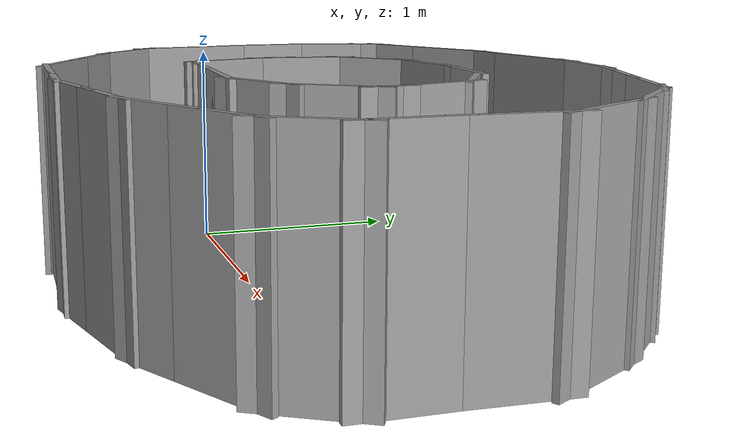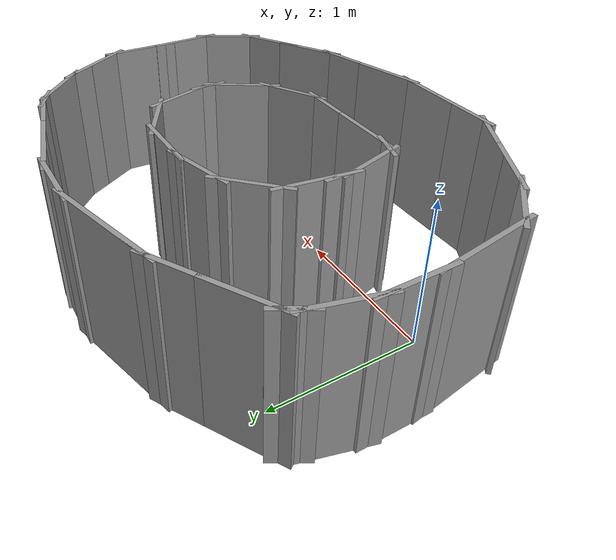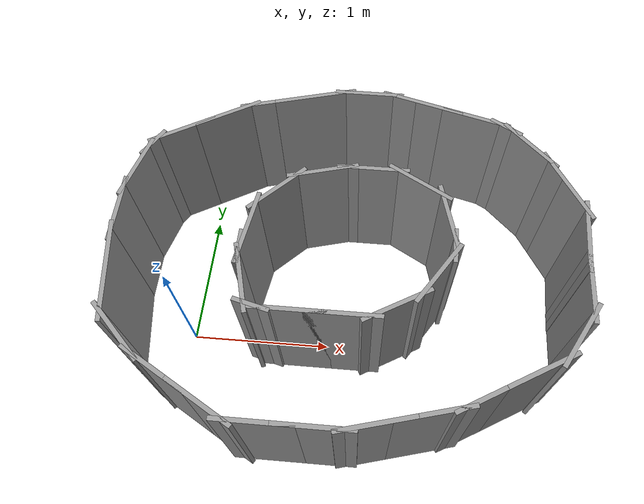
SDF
<?xml version='1.0'?>
<sdf version='1.6'>
  <model name='round'>
    <pose frame=''>1.14 0.38 0 0 -0 0</pose>
    <link name='Wall_10'>
      <collision name='Wall_10_Collision'>
        <geometry>
          <box>
            <size>0.517884 0.03 1</size>
          </box>
        </geometry>
        <pose frame=''>0 0 0.5 0 -0 0</pose>
      </collision>
      <visual name='Wall_10_Visual'>
        <pose frame=''>0 0 0.5 0 -0 0</pose>
        <geometry>
          <box>
            <size>0.517884 0.03 1</size>
          </box>
        </geometry>
        <material>
          <script>
            <uri>file://media/materials/scripts/gazebo.material</uri>
            <name>Gazebo/Grey</name>
          </script>
          <ambient>1 1 1 1</ambient>
        </material>
        <meta>
          <layer>0</layer>
        </meta>
      </visual>
      <pose frame=''>0.582455 -0.199964 0 0 -0 0.99695</pose>
    </link>
    <link name='Wall_11'>
      <collision name='Wall_11_Collision'>
        <geometry>
          <box>
            <size>0.25 0.03 1</size>
          </box>
        </geometry>
        <pose frame=''>0 0 0.5 0 -0 0</pose>
      </collision>
      <visual name='Wall_11_Visual'>
        <pose frame=''>0 0 0.5 0 -0 0</pose>
        <geometry>
          <box>
            <size>0.25 0.03 1</size>
          </box>
        </geometry>
        <material>
          <script>
            <uri>file://media/materials/scripts/gazebo.material</uri>
            <name>Gazebo/Grey</name>
          </script>
          <ambient>1 1 1 1</ambient>
        </material>
        <meta>
          <layer>0</layer>
        </meta>
      </visual>
      <pose frame=''>0.68231 0.004514 0 0 -0 1.5708</pose>
    </link>
    <link name='Wall_12'>
      <collision name='Wall_12_Collision'>
        <geometry>
          <box>
            <size>0.5 0.03 1</size>
          </box>
        </geometry>
        <pose frame=''>0 0 0.5 0 -0 0</pose>
      </collision>
      <visual name='Wall_12_Visual'>
        <pose frame=''>0 0 0.5 0 -0 0</pose>
        <geometry>
          <box>
            <size>0.5 0.03 1</size>
          </box>
        </geometry>
        <material>
          <script>
            <uri>file://media/materials/scripts/gazebo.material</uri>
            <name>Gazebo/Grey</name>
          </script>
          <ambient>1 1 1 1</ambient>
        </material>
        <meta>
          <layer>0</layer>
        </meta>
      </visual>
      <pose frame=''>0.637017 0.223551 0 0 -0 1.8326</pose>
    </link>
    <link name='Wall_13'>
      <collision name='Wall_13_Collision'>
        <geometry>
          <box>
            <size>0.5 0.03 1</size>
          </box>
        </geometry>
        <pose frame=''>0 0 0.5 0 -0 0</pose>
      </collision>
      <visual name='Wall_13_Visual'>
        <pose frame=''>0 0 0.5 0 -0 0</pose>
        <geometry>
          <box>
            <size>0.5 0.03 1</size>
          </box>
        </geometry>
        <material>
          <script>
            <uri>file://media/materials/scripts/gazebo.material</uri>
            <name>Gazebo/Grey</name>
          </script>
          <ambient>1 1 1 1</ambient>
        </material>
        <meta>
          <layer>0</layer>
        </meta>
      </visual>
      <pose frame=''>0.440169 0.480088 0 0 -0 2.61799</pose>
    </link>
    <link name='Wall_14'>
      <collision name='Wall_14_Collision'>
        <geometry>
          <box>
            <size>0.5 0.03 1</size>
          </box>
        </geometry>
        <pose frame=''>0 0 0.5 0 -0 0</pose>
      </collision>
      <visual name='Wall_14_Visual'>
        <pose frame=''>0 0 0.5 0 -0 0</pose>
        <geometry>
          <box>
            <size>0.5 0.03 1</size>
          </box>
        </geometry>
        <material>
          <script>
            <uri>file://media/materials/scripts/gazebo.material</uri>
            <name>Gazebo/Grey</name>
          </script>
          <ambient>1 1 1 1</ambient>
        </material>
        <meta>
          <layer>0</layer>
        </meta>
      </visual>
      <pose frame=''>0.113615 0.567588 0 0 -0 3.14159</pose>
    </link>
    <link name='Wall_15'>
      <collision name='Wall_15_Collision'>
        <geometry>
          <box>
            <size>0.15 0.03 1</size>
          </box>
        </geometry>
        <pose frame=''>0 0 0.5 0 -0 0</pose>
      </collision>
      <visual name='Wall_15_Visual'>
        <pose frame=''>0 0 0.5 0 -0 0</pose>
        <geometry>
          <box>
            <size>0.15 0.03 1</size>
          </box>
        </geometry>
        <material>
          <script>
            <uri>file://media/materials/scripts/gazebo.material</uri>
            <name>Gazebo/Grey</name>
          </script>
          <ambient>1 1 1 1</ambient>
        </material>
        <meta>
          <layer>0</layer>
        </meta>
      </visual>
      <pose frame=''>-0.061385 0.567588 0 0 -0 0</pose>
    </link>
    <link name='Wall_16'>
      <collision name='Wall_16_Collision'>
        <geometry>
          <box>
            <size>0.5 0.03 1</size>
          </box>
        </geometry>
        <pose frame=''>0 0 0.5 0 -0 0</pose>
      </collision>
      <visual name='Wall_16_Visual'>
        <pose frame=''>0 0 0.5 0 -0 0</pose>
        <geometry>
          <box>
            <size>0.5 0.03 1</size>
          </box>
        </geometry>
        <material>
          <script>
            <uri>file://media/materials/scripts/gazebo.material</uri>
            <name>Gazebo/Grey</name>
          </script>
          <ambient>1 1 1 1</ambient>
        </material>
        <meta>
          <layer>0</layer>
        </meta>
      </visual>
      <pose frame=''>-0.230422 0.522295 0 0 0 -2.87979</pose>
    </link>
    <link name='Wall_17'>
      <collision name='Wall_17_Collision'>
        <geometry>
          <box>
            <size>0.5 0.03 1</size>
          </box>
        </geometry>
        <pose frame=''>0 0 0.5 0 -0 0</pose>
      </collision>
      <visual name='Wall_17_Visual'>
        <pose frame=''>0 0 0.5 0 -0 0</pose>
        <geometry>
          <box>
            <size>0.5 0.03 1</size>
          </box>
        </geometry>
        <material>
          <script>
            <uri>file://media/materials/scripts/gazebo.material</uri>
            <name>Gazebo/Grey</name>
          </script>
          <ambient>1 1 1 1</ambient>
        </material>
        <meta>
          <layer>0</layer>
        </meta>
      </visual>
      <pose frame=''>-0.523203 0.353258 0 0 0 -2.35619</pose>
    </link>
    <link name='Wall_18'>
      <collision name='Wall_18_Collision'>
        <geometry>
          <box>
            <size>0.549643 0.03 1</size>
          </box>
        </geometry>
        <pose frame=''>0 0 0.5 0 -0 0</pose>
      </collision>
      <visual name='Wall_18_Visual'>
        <pose frame=''>0 0 0.5 0 -0 0</pose>
        <geometry>
          <box>
            <size>0.549643 0.03 1</size>
          </box>
        </geometry>
        <material>
          <script>
            <uri>file://media/materials/scripts/gazebo.material</uri>
            <name>Gazebo/Grey</name>
          </script>
          <ambient>1 1 1 1</ambient>
        </material>
        <meta>
          <layer>0</layer>
        </meta>
      </visual>
      <pose frame=''>-0.677318 0.032014 0 0 0 -1.72338</pose>
    </link>
    <link name='Wall_20'>
      <collision name='Wall_20_Collision'>
        <geometry>
          <box>
            <size>0.5 0.03 1</size>
          </box>
        </geometry>
        <pose frame=''>0 0 0.5 0 -0 0</pose>
      </collision>
      <visual name='Wall_20_Visual'>
        <pose frame=''>0 0 0.5 0 -0 0</pose>
        <geometry>
          <box>
            <size>0.5 0.03 1</size>
          </box>
        </geometry>
        <material>
          <script>
            <uri>file://media/materials/scripts/gazebo.material</uri>
            <name>Gazebo/Grey</name>
          </script>
          <ambient>1 1 1 1</ambient>
        </material>
        <meta>
          <layer>0</layer>
        </meta>
      </visual>
      <pose frame=''>-1.55769 0.109514 0 0 -0 1.5708</pose>
    </link>
    <link name='Wall_21'>
      <collision name='Wall_21_Collision'>
        <geometry>
          <box>
            <size>0.5 0.03 1</size>
          </box>
        </geometry>
        <pose frame=''>0 0 0.5 0 -0 0</pose>
      </collision>
      <visual name='Wall_21_Visual'>
        <pose frame=''>0 0 0.5 0 -0 0</pose>
        <geometry>
          <box>
            <size>0.5 0.03 1</size>
          </box>
        </geometry>
        <material>
          <script>
            <uri>file://media/materials/scripts/gazebo.material</uri>
            <name>Gazebo/Grey</name>
          </script>
          <ambient>1 1 1 1</ambient>
        </material>
        <meta>
          <layer>0</layer>
        </meta>
      </visual>
      <pose frame=''>-1.5124 0.453551 0 0 -0 1.309</pose>
    </link>
    <link name='Wall_22'>
      <collision name='Wall_22_Collision'>
        <geometry>
          <box>
            <size>0.25 0.03 1</size>
          </box>
        </geometry>
        <pose frame=''>0 0 0.5 0 -0 0</pose>
      </collision>
      <visual name='Wall_22_Visual'>
        <pose frame=''>0 0 0.5 0 -0 0</pose>
        <geometry>
          <box>
            <size>0.25 0.03 1</size>
          </box>
        </geometry>
        <material>
          <script>
            <uri>file://media/materials/scripts/gazebo.material</uri>
            <name>Gazebo/Grey</name>
          </script>
          <ambient>1 1 1 1</ambient>
        </material>
        <meta>
          <layer>0</layer>
        </meta>
      </visual>
      <pose frame=''>-1.4421 0.66589 0 0 -0 1.0472</pose>
    </link>
    <link name='Wall_23'>
      <collision name='Wall_23_Collision'>
        <geometry>
          <box>
            <size>0.5 0.03 1</size>
          </box>
        </geometry>
        <pose frame=''>0 0 0.5 0 -0 0</pose>
      </collision>
      <visual name='Wall_23_Visual'>
        <pose frame=''>0 0 0.5 0 -0 0</pose>
        <geometry>
          <box>
            <size>0.5 0.03 1</size>
          </box>
        </geometry>
        <material>
          <script>
            <uri>file://media/materials/scripts/gazebo.material</uri>
            <name>Gazebo/Grey</name>
          </script>
          <ambient>1 1 1 1</ambient>
        </material>
        <meta>
          <layer>0</layer>
        </meta>
      </visual>
      <pose frame=''>-1.26555 0.796691 0 0 -0 0.523599</pose>
    </link>
    <link name='Wall_24'>
      <collision name='Wall_24_Collision'>
        <geometry>
          <box>
            <size>0.5 0.03 1</size>
          </box>
        </geometry>
        <pose frame=''>0 0 0.5 0 -0 0</pose>
      </collision>
      <visual name='Wall_24_Visual'>
        <pose frame=''>0 0 0.5 0 -0 0</pose>
        <geometry>
          <box>
            <size>0.5 0.03 1</size>
          </box>
        </geometry>
        <material>
          <script>
            <uri>file://media/materials/scripts/gazebo.material</uri>
            <name>Gazebo/Grey</name>
          </script>
          <ambient>1 1 1 1</ambient>
        </material>
        <meta>
          <layer>0</layer>
        </meta>
      </visual>
      <pose frame=''>-0.96244 0.971691 0 0 -0 0.523599</pose>
    </link>
    <link name='Wall_25'>
      <collision name='Wall_25_Collision'>
        <geometry>
          <box>
            <size>0.25 0.03 1</size>
          </box>
        </geometry>
        <pose frame=''>0 0 0.5 0 -0 0</pose>
      </collision>
      <visual name='Wall_25_Visual'>
        <pose frame=''>0 0 0.5 0 -0 0</pose>
        <geometry>
          <box>
            <size>0.25 0.03 1</size>
          </box>
        </geometry>
        <material>
          <script>
            <uri>file://media/materials/scripts/gazebo.material</uri>
            <name>Gazebo/Grey</name>
          </script>
          <ambient>1 1 1 1</ambient>
        </material>
        <meta>
          <layer>0</layer>
        </meta>
      </visual>
      <pose frame=''>-0.762589 1.07213 0 0 -0 0.261799</pose>
    </link>
    <link name='Wall_26'>
      <collision name='Wall_26_Collision'>
        <geometry>
          <box>
            <size>0.75 0.03 1</size>
          </box>
        </geometry>
        <pose frame=''>0 0 0.5 0 -0 0</pose>
      </collision>
      <visual name='Wall_26_Visual'>
        <pose frame=''>0 0 0.5 0 -0 0</pose>
        <geometry>
          <box>
            <size>0.75 0.03 1</size>
          </box>
        </geometry>
        <material>
          <script>
            <uri>file://media/materials/scripts/gazebo.material</uri>
            <name>Gazebo/Grey</name>
          </script>
          <ambient>1 1 1 1</ambient>
        </material>
        <meta>
          <layer>0</layer>
        </meta>
      </visual>
      <pose frame=''>-0.424515 1.16272 0 0 -0 0.261799</pose>
    </link>
    <link name='Wall_27'>
      <collision name='Wall_27_Collision'>
        <geometry>
          <box>
            <size>0.5 0.03 1</size>
          </box>
        </geometry>
        <pose frame=''>0 0 0.5 0 -0 0</pose>
      </collision>
      <visual name='Wall_27_Visual'>
        <pose frame=''>0 0 0.5 0 -0 0</pose>
        <geometry>
          <box>
            <size>0.5 0.03 1</size>
          </box>
        </geometry>
        <material>
          <script>
            <uri>file://media/materials/scripts/gazebo.material</uri>
            <name>Gazebo/Grey</name>
          </script>
          <ambient>1 1 1 1</ambient>
        </material>
        <meta>
          <layer>0</layer>
        </meta>
      </visual>
      <pose frame=''>0.040263 1.24036 0 0 -0 0</pose>
    </link>
    <link name='Wall_28'>
      <collision name='Wall_28_Collision'>
        <geometry>
          <box>
            <size>0.25 0.03 1</size>
          </box>
        </geometry>
        <pose frame=''>0 0 0.5 0 -0 0</pose>
      </collision>
      <visual name='Wall_28_Visual'>
        <pose frame=''>0 0 0.5 0 -0 0</pose>
        <geometry>
          <box>
            <size>0.25 0.03 1</size>
          </box>
        </geometry>
        <material>
          <script>
            <uri>file://media/materials/scripts/gazebo.material</uri>
            <name>Gazebo/Grey</name>
          </script>
          <ambient>1 1 1 1</ambient>
        </material>
        <meta>
          <layer>0</layer>
        </meta>
      </visual>
      <pose frame=''>0.263559 1.22742 0 0 0 -0.261799</pose>
    </link>
    <link name='Wall_29'>
      <collision name='Wall_29_Collision'>
        <geometry>
          <box>
            <size>0.5 0.03 1</size>
          </box>
        </geometry>
        <pose frame=''>0 0 0.5 0 -0 0</pose>
      </collision>
      <visual name='Wall_29_Visual'>
        <pose frame=''>0 0 0.5 0 -0 0</pose>
        <geometry>
          <box>
            <size>0.5 0.03 1</size>
          </box>
        </geometry>
        <material>
          <script>
            <uri>file://media/materials/scripts/gazebo.material</uri>
            <name>Gazebo/Grey</name>
          </script>
          <ambient>1 1 1 1</ambient>
        </material>
        <meta>
          <layer>0</layer>
        </meta>
      </visual>
      <pose frame=''>0.480893 1.16919 0 0 0 -0.261799</pose>
    </link>
    <link name='Wall_30'>
      <collision name='Wall_30_Collision'>
        <geometry>
          <box>
            <size>0.5 0.03 1</size>
          </box>
        </geometry>
        <pose frame=''>0 0 0.5 0 -0 0</pose>
      </collision>
      <visual name='Wall_30_Visual'>
        <pose frame=''>0 0 0.5 0 -0 0</pose>
        <geometry>
          <box>
            <size>0.5 0.03 1</size>
          </box>
        </geometry>
        <material>
          <script>
            <uri>file://media/materials/scripts/gazebo.material</uri>
            <name>Gazebo/Grey</name>
          </script>
          <ambient>1 1 1 1</ambient>
        </material>
        <meta>
          <layer>0</layer>
        </meta>
      </visual>
      <pose frame=''>0.818967 1.0786 0 0 0 -0.261799</pose>
    </link>
    <link name='Wall_31'>
      <collision name='Wall_31_Collision'>
        <geometry>
          <box>
            <size>0.25 0.03 1</size>
          </box>
        </geometry>
        <pose frame=''>0 0 0.5 0 -0 0</pose>
      </collision>
      <visual name='Wall_31_Visual'>
        <pose frame=''>0 0 0.5 0 -0 0</pose>
        <geometry>
          <box>
            <size>0.25 0.03 1</size>
          </box>
        </geometry>
        <material>
          <script>
            <uri>file://media/materials/scripts/gazebo.material</uri>
            <name>Gazebo/Grey</name>
          </script>
          <ambient>1 1 1 1</ambient>
        </material>
        <meta>
          <layer>0</layer>
        </meta>
      </visual>
      <pose frame=''>1.0313 1.00831 0 0 0 -0.523599</pose>
    </link>
    <link name='Wall_32'>
      <collision name='Wall_32_Collision'>
        <geometry>
          <box>
            <size>0.5 0.03 1</size>
          </box>
        </geometry>
        <pose frame=''>0 0 0.5 0 -0 0</pose>
      </collision>
      <visual name='Wall_32_Visual'>
        <pose frame=''>0 0 0.5 0 -0 0</pose>
        <geometry>
          <box>
            <size>0.5 0.03 1</size>
          </box>
        </geometry>
        <material>
          <script>
            <uri>file://media/materials/scripts/gazebo.material</uri>
            <name>Gazebo/Grey</name>
          </script>
          <ambient>1 1 1 1</ambient>
        </material>
        <meta>
          <layer>0</layer>
        </meta>
      </visual>
      <pose frame=''>1.19835 0.859565 0 0 0 -0.785398</pose>
    </link>
    <link name='Wall_33'>
      <collision name='Wall_33_Collision'>
        <geometry>
          <box>
            <size>0.25 0.03 1</size>
          </box>
        </geometry>
        <pose frame=''>0 0 0.5 0 -0 0</pose>
      </collision>
      <visual name='Wall_33_Visual'>
        <pose frame=''>0 0 0.5 0 -0 0</pose>
        <geometry>
          <box>
            <size>0.25 0.03 1</size>
          </box>
        </geometry>
        <material>
          <script>
            <uri>file://media/materials/scripts/gazebo.material</uri>
            <name>Gazebo/Grey</name>
          </script>
          <ambient>1 1 1 1</ambient>
        </material>
        <meta>
          <layer>0</layer>
        </meta>
      </visual>
      <pose frame=''>1.34709 0.69252 0 0 0 -1.0472</pose>
    </link>
    <link name='Wall_34'>
      <collision name='Wall_34_Collision'>
        <geometry>
          <box>
            <size>0.5 0.03 1</size>
          </box>
        </geometry>
        <pose frame=''>0 0 0.5 0 -0 0</pose>
      </collision>
      <visual name='Wall_34_Visual'>
        <pose frame=''>0 0 0.5 0 -0 0</pose>
        <geometry>
          <box>
            <size>0.5 0.03 1</size>
          </box>
        </geometry>
        <material>
          <script>
            <uri>file://media/materials/scripts/gazebo.material</uri>
            <name>Gazebo/Grey</name>
          </script>
          <ambient>1 1 1 1</ambient>
        </material>
        <meta>
          <layer>0</layer>
        </meta>
      </visual>
      <pose frame=''>1.45959 0.497665 0 0 0 -1.0472</pose>
    </link>
    <link name='Wall_35'>
      <collision name='Wall_35_Collision'>
        <geometry>
          <box>
            <size>0.541875 0.03 1</size>
          </box>
        </geometry>
        <pose frame=''>0 0 0.5 0 -0 0</pose>
      </collision>
      <visual name='Wall_35_Visual'>
        <pose frame=''>0 0 0.5 0 -0 0</pose>
        <geometry>
          <box>
            <size>0.541875 0.03 1</size>
          </box>
        </geometry>
        <material>
          <script>
            <uri>file://media/materials/scripts/gazebo.material</uri>
            <name>Gazebo/Grey</name>
          </script>
          <ambient>1 1 1 1</ambient>
        </material>
        <meta>
          <layer>0</layer>
        </meta>
      </visual>
      <pose frame=''>1.5397 0.150312 0 0 0 -1.60853</pose>
    </link>
    <link name='Wall_36'>
      <collision name='Wall_36_Collision'>
        <geometry>
          <box>
            <size>0.5 0.03 1</size>
          </box>
        </geometry>
        <pose frame=''>0 0 0.5 0 -0 0</pose>
      </collision>
      <visual name='Wall_36_Visual'>
        <pose frame=''>0 0 0.5 0 -0 0</pose>
        <geometry>
          <box>
            <size>0.5 0.03 1</size>
          </box>
        </geometry>
        <material>
          <script>
            <uri>file://media/materials/scripts/gazebo.material</uri>
            <name>Gazebo/Grey</name>
          </script>
          <ambient>1 1 1 1</ambient>
        </material>
        <meta>
          <layer>0</layer>
        </meta>
      </visual>
      <pose frame=''>1.53231 -0.220486 0 0 0 -1.5708</pose>
    </link>
    <link name='Wall_37'>
      <collision name='Wall_37_Collision'>
        <geometry>
          <box>
            <size>0.5 0.03 1</size>
          </box>
        </geometry>
        <pose frame=''>0 0 0.5 0 -0 0</pose>
      </collision>
      <visual name='Wall_37_Visual'>
        <pose frame=''>0 0 0.5 0 -0 0</pose>
        <geometry>
          <box>
            <size>0.5 0.03 1</size>
          </box>
        </geometry>
        <material>
          <script>
            <uri>file://media/materials/scripts/gazebo.material</uri>
            <name>Gazebo/Grey</name>
          </script>
          <ambient>1 1 1 1</ambient>
        </material>
        <meta>
          <layer>0</layer>
        </meta>
      </visual>
      <pose frame=''>1.44481 -0.54704 0 0 0 -2.0944</pose>
    </link>
    <link name='Wall_38'>
      <collision name='Wall_38_Collision'>
        <geometry>
          <box>
            <size>0.5 0.03 1</size>
          </box>
        </geometry>
        <pose frame=''>0 0 0.5 0 -0 0</pose>
      </collision>
      <visual name='Wall_38_Visual'>
        <pose frame=''>0 0 0.5 0 -0 0</pose>
        <geometry>
          <box>
            <size>0.5 0.03 1</size>
          </box>
        </geometry>
        <material>
          <script>
            <uri>file://media/materials/scripts/gazebo.material</uri>
            <name>Gazebo/Grey</name>
          </script>
          <ambient>1 1 1 1</ambient>
        </material>
        <meta>
          <layer>0</layer>
        </meta>
      </visual>
      <pose frame=''>1.20576 -0.786095 0 0 0 -2.61799</pose>
    </link>
    <link name='Wall_39'>
      <collision name='Wall_39_Collision'>
        <geometry>
          <box>
            <size>0.5 0.03 1</size>
          </box>
        </geometry>
        <pose frame=''>0 0 0.5 0 -0 0</pose>
      </collision>
      <visual name='Wall_39_Visual'>
        <pose frame=''>0 0 0.5 0 -0 0</pose>
        <geometry>
          <box>
            <size>0.5 0.03 1</size>
          </box>
        </geometry>
        <material>
          <script>
            <uri>file://media/materials/scripts/gazebo.material</uri>
            <name>Gazebo/Grey</name>
          </script>
          <ambient>1 1 1 1</ambient>
        </material>
        <meta>
          <layer>0</layer>
        </meta>
      </visual>
      <pose frame=''>0.902647 -0.961095 0 0 0 -2.61799</pose>
    </link>
    <link name='Wall_4'>
      <collision name='Wall_4_Collision'>
        <geometry>
          <box>
            <size>0.25 0.03 1</size>
          </box>
        </geometry>
        <pose frame=''>0 0 0.5 0 -0 0</pose>
      </collision>
      <visual name='Wall_4_Visual'>
        <pose frame=''>0 0 0.5 0 -0 0</pose>
        <geometry>
          <box>
            <size>0.25 0.03 1</size>
          </box>
        </geometry>
        <material>
          <script>
            <uri>file://media/materials/scripts/gazebo.material</uri>
            <name>Gazebo/Grey</name>
          </script>
          <ambient>1 1 1 1</ambient>
        </material>
        <meta>
          <layer>0</layer>
        </meta>
      </visual>
      <pose frame=''>-0.70769 -0.115486 0 0 0 -1.5708</pose>
    </link>
    <link name='Wall_40'>
      <collision name='Wall_40_Collision'>
        <geometry>
          <box>
            <size>0.5 0.03 1</size>
          </box>
        </geometry>
        <pose frame=''>0 0 0.5 0 -0 0</pose>
      </collision>
      <visual name='Wall_40_Visual'>
        <pose frame=''>0 0 0.5 0 -0 0</pose>
        <geometry>
          <box>
            <size>0.5 0.03 1</size>
          </box>
        </geometry>
        <material>
          <script>
            <uri>file://media/materials/scripts/gazebo.material</uri>
            <name>Gazebo/Grey</name>
          </script>
          <ambient>1 1 1 1</ambient>
        </material>
        <meta>
          <layer>0</layer>
        </meta>
      </visual>
      <pose frame=''>0.582056 -1.09389 0 0 0 -2.87979</pose>
    </link>
    <link name='Wall_41'>
      <collision name='Wall_41_Collision'>
        <geometry>
          <box>
            <size>0.5 0.03 1</size>
          </box>
        </geometry>
        <pose frame=''>0 0 0.5 0 -0 0</pose>
      </collision>
      <visual name='Wall_41_Visual'>
        <pose frame=''>0 0 0.5 0 -0 0</pose>
        <geometry>
          <box>
            <size>0.5 0.03 1</size>
          </box>
        </geometry>
        <material>
          <script>
            <uri>file://media/materials/scripts/gazebo.material</uri>
            <name>Gazebo/Grey</name>
          </script>
          <ambient>1 1 1 1</ambient>
        </material>
        <meta>
          <layer>0</layer>
        </meta>
      </visual>
      <pose frame=''>0.243982 -1.18447 0 0 0 -2.87979</pose>
    </link>
    <link name='Wall_42'>
      <collision name='Wall_42_Collision'>
        <geometry>
          <box>
            <size>0.5 0.03 1</size>
          </box>
        </geometry>
        <pose frame=''>0 0 0.5 0 -0 0</pose>
      </collision>
      <visual name='Wall_42_Visual'>
        <pose frame=''>0 0 0.5 0 -0 0</pose>
        <geometry>
          <box>
            <size>0.5 0.03 1</size>
          </box>
        </geometry>
        <material>
          <script>
            <uri>file://media/materials/scripts/gazebo.material</uri>
            <name>Gazebo/Grey</name>
          </script>
          <ambient>1 1 1 1</ambient>
        </material>
        <meta>
          <layer>0</layer>
        </meta>
      </visual>
      <pose frame=''>-0.100055 -1.22977 0 0 -0 3.14159</pose>
    </link>
    <link name='Wall_43'>
      <collision name='Wall_43_Collision'>
        <geometry>
          <box>
            <size>0.5 0.03 1</size>
          </box>
        </geometry>
        <pose frame=''>0 0 0.5 0 -0 0</pose>
      </collision>
      <visual name='Wall_43_Visual'>
        <pose frame=''>0 0 0.5 0 -0 0</pose>
        <geometry>
          <box>
            <size>0.5 0.03 1</size>
          </box>
        </geometry>
        <material>
          <script>
            <uri>file://media/materials/scripts/gazebo.material</uri>
            <name>Gazebo/Grey</name>
          </script>
          <ambient>1 1 1 1</ambient>
        </material>
        <meta>
          <layer>0</layer>
        </meta>
      </visual>
      <pose frame=''>-0.450055 -1.22977 0 0 -0 3.14159</pose>
    </link>
    <link name='Wall_44'>
      <collision name='Wall_44_Collision'>
        <geometry>
          <box>
            <size>0.5 0.03 1</size>
          </box>
        </geometry>
        <pose frame=''>0 0 0.5 0 -0 0</pose>
      </collision>
      <visual name='Wall_44_Visual'>
        <pose frame=''>0 0 0.5 0 -0 0</pose>
        <geometry>
          <box>
            <size>0.5 0.03 1</size>
          </box>
        </geometry>
        <material>
          <script>
            <uri>file://media/materials/scripts/gazebo.material</uri>
            <name>Gazebo/Grey</name>
          </script>
          <ambient>1 1 1 1</ambient>
        </material>
        <meta>
          <layer>0</layer>
        </meta>
      </visual>
      <pose frame=''>-0.77661 -1.14227 0 0 -0 2.61799</pose>
    </link>
    <link name='Wall_45'>
      <collision name='Wall_45_Collision'>
        <geometry>
          <box>
            <size>0.5 0.03 1</size>
          </box>
        </geometry>
        <pose frame=''>0 0 0.5 0 -0 0</pose>
      </collision>
      <visual name='Wall_45_Visual'>
        <pose frame=''>0 0 0.5 0 -0 0</pose>
        <geometry>
          <box>
            <size>0.5 0.03 1</size>
          </box>
        </geometry>
        <material>
          <script>
            <uri>file://media/materials/scripts/gazebo.material</uri>
            <name>Gazebo/Grey</name>
          </script>
          <ambient>1 1 1 1</ambient>
        </material>
        <meta>
          <layer>0</layer>
        </meta>
      </visual>
      <pose frame=''>-1.07972 -0.967268 0 0 -0 2.61799</pose>
    </link>
    <link name='Wall_46'>
      <collision name='Wall_46_Collision'>
        <geometry>
          <box>
            <size>0.5 0.03 1</size>
          </box>
        </geometry>
        <pose frame=''>0 0 0.5 0 -0 0</pose>
      </collision>
      <visual name='Wall_46_Visual'>
        <pose frame=''>0 0 0.5 0 -0 0</pose>
        <geometry>
          <box>
            <size>0.5 0.03 1</size>
          </box>
        </geometry>
        <material>
          <script>
            <uri>file://media/materials/scripts/gazebo.material</uri>
            <name>Gazebo/Grey</name>
          </script>
          <ambient>1 1 1 1</ambient>
        </material>
        <meta>
          <layer>0</layer>
        </meta>
      </visual>
      <pose frame=''>-1.35502 -0.756024 0 0 -0 2.35619</pose>
    </link>
    <link name='Wall_47'>
      <collision name='Wall_47_Collision'>
        <geometry>
          <box>
            <size>0.722264 0.03 1</size>
          </box>
        </geometry>
        <pose frame=''>0 0 0.5 0 -0 0</pose>
      </collision>
      <visual name='Wall_47_Visual'>
        <pose frame=''>0 0 0.5 0 -0 0</pose>
        <geometry>
          <box>
            <size>0.722264 0.03 1</size>
          </box>
        </geometry>
        <material>
          <script>
            <uri>file://media/materials/scripts/gazebo.material</uri>
            <name>Gazebo/Grey</name>
          </script>
          <ambient>1 1 1 1</ambient>
        </material>
        <meta>
          <layer>0</layer>
        </meta>
      </visual>
      <pose frame=''>-1.51822 -0.348883 0 0 -0 1.70916</pose>
    </link>
    <link name='Wall_5'>
      <collision name='Wall_5_Collision'>
        <geometry>
          <box>
            <size>0.5 0.03 1</size>
          </box>
        </geometry>
        <pose frame=''>0 0 0.5 0 -0 0</pose>
      </collision>
      <visual name='Wall_5_Visual'>
        <pose frame=''>0 0 0.5 0 -0 0</pose>
        <geometry>
          <box>
            <size>0.5 0.03 1</size>
          </box>
        </geometry>
        <material>
          <script>
            <uri>file://media/materials/scripts/gazebo.material</uri>
            <name>Gazebo/Grey</name>
          </script>
          <ambient>1 1 1 1</ambient>
        </material>
        <meta>
          <layer>0</layer>
        </meta>
      </visual>
      <pose frame=''>-0.662396 -0.334523 0 0 0 -1.309</pose>
    </link>
    <link name='Wall_6'>
      <collision name='Wall_6_Collision'>
        <geometry>
          <box>
            <size>0.25 0.03 1</size>
          </box>
        </geometry>
        <pose frame=''>0 0 0.5 0 -0 0</pose>
      </collision>
      <visual name='Wall_6_Visual'>
        <pose frame=''>0 0 0.5 0 -0 0</pose>
        <geometry>
          <box>
            <size>0.25 0.03 1</size>
          </box>
        </geometry>
        <material>
          <script>
            <uri>file://media/materials/scripts/gazebo.material</uri>
            <name>Gazebo/Grey</name>
          </script>
          <ambient>1 1 1 1</ambient>
        </material>
        <meta>
          <layer>0</layer>
        </meta>
      </visual>
      <pose frame=''>-0.568807 -0.516501 0 0 0 -0.261799</pose>
    </link>
    <link name='Wall_7'>
      <collision name='Wall_7_Collision'>
        <geometry>
          <box>
            <size>0.5 0.03 1</size>
          </box>
        </geometry>
        <pose frame=''>0 0 0.5 0 -0 0</pose>
      </collision>
      <visual name='Wall_7_Visual'>
        <pose frame=''>0 0 0.5 0 -0 0</pose>
        <geometry>
          <box>
            <size>0.5 0.03 1</size>
          </box>
        </geometry>
        <material>
          <script>
            <uri>file://media/materials/scripts/gazebo.material</uri>
            <name>Gazebo/Grey</name>
          </script>
          <ambient>1 1 1 1</ambient>
        </material>
        <meta>
          <layer>0</layer>
        </meta>
      </visual>
      <pose frame=''>-0.34551 -0.529442 0 0 -0 0</pose>
    </link>
    <link name='Wall_8'>
      <collision name='Wall_8_Collision'>
        <geometry>
          <box>
            <size>0.5 0.03 1</size>
          </box>
        </geometry>
        <pose frame=''>0 0 0.5 0 -0 0</pose>
      </collision>
      <visual name='Wall_8_Visual'>
        <pose frame=''>0 0 0.5 0 -0 0</pose>
        <geometry>
          <box>
            <size>0.5 0.03 1</size>
          </box>
        </geometry>
        <material>
          <script>
            <uri>file://media/materials/scripts/gazebo.material</uri>
            <name>Gazebo/Grey</name>
          </script>
          <ambient>1 1 1 1</ambient>
        </material>
        <meta>
          <layer>0</layer>
        </meta>
      </visual>
      <pose frame=''>0.00449 -0.529442 0 0 -0 0</pose>
    </link>
    <link name='Wall_9'>
      <collision name='Wall_9_Collision'>
        <geometry>
          <box>
            <size>0.5 0.03 1</size>
          </box>
        </geometry>
        <pose frame=''>0 0 0.5 0 -0 0</pose>
      </collision>
      <visual name='Wall_9_Visual'>
        <pose frame=''>0 0 0.5 0 -0 0</pose>
        <geometry>
          <box>
            <size>0.5 0.03 1</size>
          </box>
        </geometry>
        <material>
          <script>
            <uri>file://media/materials/scripts/gazebo.material</uri>
            <name>Gazebo/Grey</name>
          </script>
          <ambient>1 1 1 1</ambient>
        </material>
        <meta>
          <layer>0</layer>
        </meta>
      </visual>
      <pose frame=''>0.331044 -0.441942 0 0 -0 0.523599</pose>
    </link>
    <static>1</static>
  </model>
</sdf>
